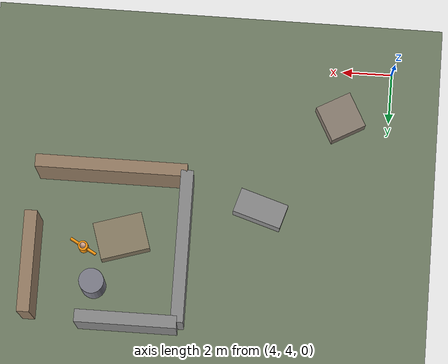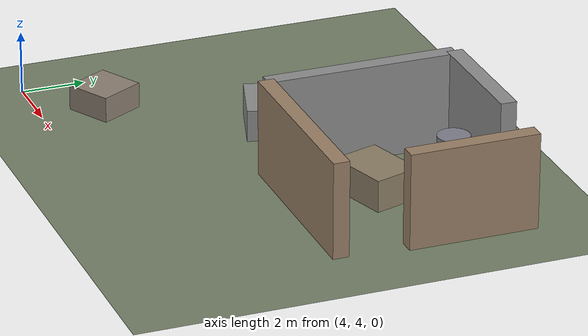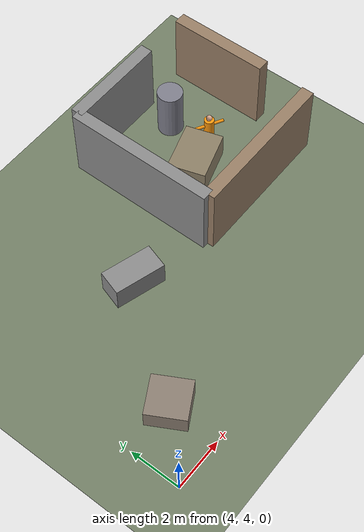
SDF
<sdf version="1.9">
 <world name="rescue_world">
  <physics name="1ms" type="ignore">
   <max_step_size>0.001</max_step_size>
   <real_time_factor>1.0</real_time_factor>
  </physics>
  <plugin filename="gz-sim-physics-system" name="gz::sim::systems::Physics"/>
  <plugin filename="gz-sim-user-commands-system" name="gz::sim::systems::UserCommands"/>
  <plugin filename="gz-sim-scene-broadcaster-system" name="gz::sim::systems::SceneBroadcaster"/>
  <plugin filename="gz-sim-sensors-system" name="gz::sim::systems::Sensors">
   <render_engine>ogre2</render_engine>
  </plugin>
  <plugin filename="gz-sim-imu-system" name="gz::sim::systems::Imu"/>
  <plugin filename="gz-sim-navsat-system" name="gz::sim::systems::NavSat"/>
  <spherical_coordinates>
   <latitude_deg>-35.363262</latitude_deg>
   <longitude_deg>149.165237</longitude_deg>
   <elevation>584</elevation>
   <heading_deg>0</heading_deg>
   <surface_model>EARTH_WGS84</surface_model>
  </spherical_coordinates>
  <light type="directional" name="sun">
   <cast_shadows>false</cast_shadows>
   <pose>0 0 10 0 0 0</pose>
   <diffuse>0.8 0.8 0.8 1</diffuse>
   <specular>0.2 0.2 0.2 1</specular>
   <direction>-0.5 0.1 -0.9</direction>
  </light>
  <scene>
   <ambient>0.6 0.6 0.6 1</ambient>
   <background>0.66 0.78 0.9 1</background>
   <shadows>false</shadows>
   <grid>true</grid>
  </scene>
  <model name="ground_plane">
   <static>true</static>
   <link name="link">
    <collision name="collision">
     <geometry><plane><normal>0 0 1</normal><size>100 100</size></plane></geometry>
    </collision>
    <visual name="visual">
     <geometry><plane><normal>0 0 1</normal><size>100 100</size></plane></geometry>
     <material><ambient>0.45 0.5 0.4 1</ambient><diffuse>0.45 0.5 0.4 1</diffuse></material>
    </visual>
   </link>
  </model>
  <model name="wall_west">
   <static>true</static>
   <pose>12 12 1.5 0 0 0</pose>
   <link name="link">
    <visual name="visual">
     <geometry><box><size>0.5 6.0 3.0</size></box></geometry>
     <material><ambient>0.5 0.5 0.5 1</ambient><diffuse>0.55 0.55 0.55 1</diffuse></material>
    </visual>
    <collision name="collision"><geometry><box><size>0.5 6.0 3.0</size></box></geometry></collision>
   </link>
  </model>
  <model name="wall_south">
   <static>true</static>
   <pose>15 9 1.5 0 0 0</pose>
   <link name="link">
    <visual name="visual">
     <geometry><box><size>6.0 0.5 3.0</size></box></geometry>
     <material><ambient>0.55 0.45 0.35 1</ambient><diffuse>0.6 0.5 0.4 1</diffuse></material>
    </visual>
    <collision name="collision"><geometry><box><size>6.0 0.5 3.0</size></box></geometry></collision>
   </link>
  </model>
  <model name="wall_north">
   <static>true</static>
   <pose>14 15 1.5 0 0 0</pose>
   <link name="link">
    <visual name="visual">
     <geometry><box><size>4.0 0.5 3.0</size></box></geometry>
     <material><ambient>0.5 0.5 0.5 1</ambient><diffuse>0.55 0.55 0.55 1</diffuse></material>
    </visual>
    <collision name="collision"><geometry><box><size>4.0 0.5 3.0</size></box></geometry></collision>
   </link>
  </model>
  <model name="rubble_center">
   <static>true</static>
   <pose>14.5 11.5 0.5 0 0 0.3</pose>
   <link name="link">
    <visual name="visual">
     <geometry><box><size>2.0 1.5 1.0</size></box></geometry>
     <material><ambient>0.45 0.4 0.35 1</ambient><diffuse>0.55 0.5 0.4 1</diffuse></material>
    </visual>
    <collision name="collision"><geometry><box><size>2.0 1.5 1.0</size></box></geometry></collision>
   </link>
  </model>
  <model name="debris_column">
   <static>true</static>
   <pose>15.5 13.5 1.0 0 0 0</pose>
   <link name="link">
    <visual name="visual">
     <geometry><cylinder><radius>0.5</radius><length>2.0</length></cylinder></geometry>
     <material><ambient>0.4 0.4 0.45 1</ambient><diffuse>0.5 0.5 0.55 1</diffuse></material>
    </visual>
    <collision name="collision">
     <geometry><cylinder><radius>0.5</radius><length>2.0</length></cylinder></geometry>
    </collision>
   </link>
  </model>
  <model name="wall_east_partial">
   <static>true</static>
   <pose>18 13 1.5 0 0 0</pose>
   <link name="link">
    <visual name="visual">
     <geometry><box><size>0.5 4.0 3.0</size></box></geometry>
     <material><ambient>0.55 0.45 0.35 1</ambient><diffuse>0.6 0.5 0.4 1</diffuse></material>
    </visual>
    <collision name="collision"><geometry><box><size>0.5 4.0 3.0</size></box></geometry></collision>
   </link>
  </model>
  <model name="rubble_approach_1">
   <static>true</static>
   <pose>6 6 0.4 0 0 0.5</pose>
   <link name="link">
    <visual name="visual">
     <geometry><box><size>1.5 1.5 0.8</size></box></geometry>
     <material><ambient>0.5 0.45 0.4 1</ambient><diffuse>0.55 0.5 0.45 1</diffuse></material>
    </visual>
    <collision name="collision"><geometry><box><size>1.5 1.5 0.8</size></box></geometry></collision>
   </link>
  </model>
  <model name="rubble_approach_2">
   <static>true</static>
   <pose>9 10 0.5 0 0 -0.3</pose>
   <link name="link">
    <visual name="visual">
     <geometry><box><size>2.0 1.0 1.0</size></box></geometry>
     <material><ambient>0.5 0.5 0.5 1</ambient><diffuse>0.55 0.55 0.55 1</diffuse></material>
    </visual>
    <collision name="collision"><geometry><box><size>2.0 1.0 1.0</size></box></geometry></collision>
   </link>
  </model>
  <model name="victim">
   <static>true</static>
   <pose>16 12 0 0 0 -0.5</pose>
   <link name="body">
    <visual name="torso">
     <pose>0 0 0.6 0 0 0</pose>
     <geometry><cylinder><radius>0.2</radius><length>0.8</length></cylinder></geometry>
     <material><ambient>1.0 0.5 0.0 1</ambient><diffuse>1.0 0.6 0.05 1</diffuse></material>
    </visual>
    <visual name="legs">
     <pose>0 0 0.15 0 0 0</pose>
     <geometry><cylinder><radius>0.15</radius><length>0.3</length></cylinder></geometry>
     <material><ambient>0.2 0.2 0.3 1</ambient><diffuse>0.25 0.25 0.35 1</diffuse></material>
    </visual>
    <visual name="head">
     <pose>0 0 1.1 0 0 0</pose>
     <geometry><sphere><radius>0.12</radius></sphere></geometry>
     <material><ambient>0.8 0.6 0.5 1</ambient><diffuse>0.85 0.65 0.55 1</diffuse></material>
    </visual>
    <visual name="left_arm">
     <pose>0.35 0 0.7 0 1.57 0</pose>
     <geometry><cylinder><radius>0.06</radius><length>0.5</length></cylinder></geometry>
     <material><ambient>1.0 0.5 0.0 1</ambient><diffuse>1.0 0.6 0.05 1</diffuse></material>
    </visual>
    <visual name="right_arm">
     <pose>-0.35 0 0.7 0 1.57 0</pose>
     <geometry><cylinder><radius>0.06</radius><length>0.5</length></cylinder></geometry>
     <material><ambient>1.0 0.5 0.0 1</ambient><diffuse>1.0 0.6 0.05 1</diffuse></material>
    </visual>
    <collision name="collision">
     <pose>0 0 0.6 0 0 0</pose>
     <geometry><cylinder><radius>0.25</radius><length>1.2</length></cylinder></geometry>
    </collision>
   </link>
  </model>
 </world>
</sdf>
